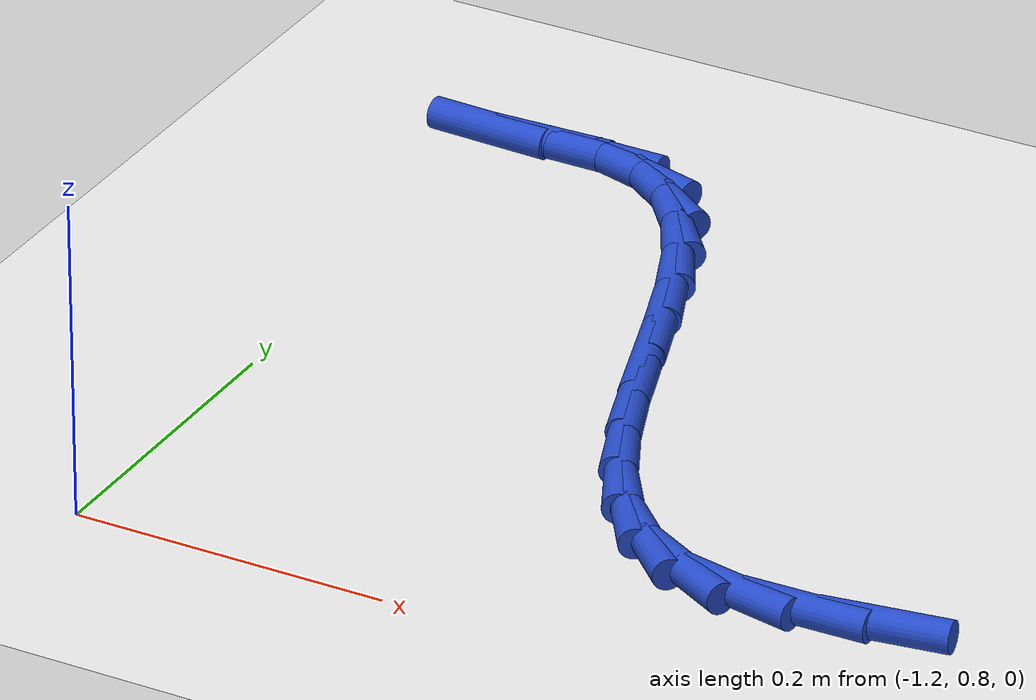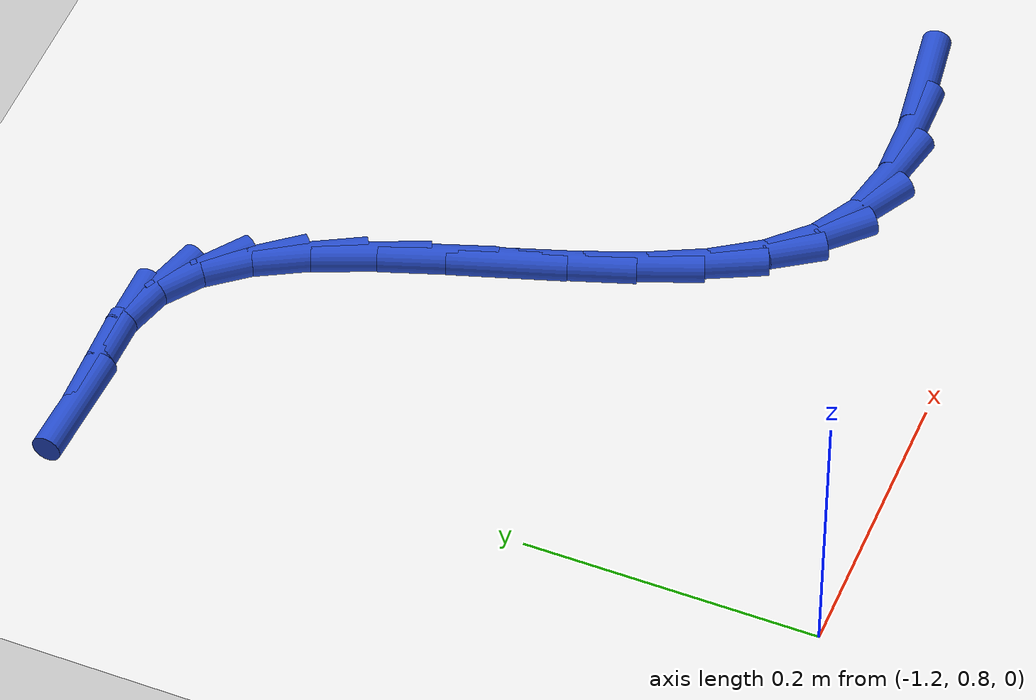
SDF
<sdf version="1.6">
 <world name="default">
  <model name="ground_plane">
   <static>1</static>
   <link name="link">
    <collision name="collision">
     <geometry><plane><normal>0 0 1</normal><size>100 100</size></plane></geometry>
     <surface><friction><ode><mu>100</mu><mu2>50</mu2></ode></friction></surface>
    </collision>
    <visual name="visual">
     <cast_shadows>0</cast_shadows>
     <geometry><plane><normal>0 0 1</normal><size>100 100</size></plane></geometry>
     <material>
      <script><uri>file://media/materials/scripts/gazebo.material</uri><name>Gazebo/WhiteGlow</name></script>
     </material>
    </visual>
   </link>
  </model>
  <model name="line">
   <link name="link_36">
    <pose>-0.7326934429722315 0.8970914601000852 0.01 0 1.57 0.14309042923364193</pose>
    <collision name="collision">
     <geometry><cylinder><radius>0.01</radius><length>0.08</length></cylinder></geometry>
    </collision>
    <visual name="visual">
     <material>
      <script><name>Gazebo/Blue</name><uri>file://media/materials/scripts/gazebo.material</uri></script>
     </material>
     <geometry><cylinder><radius>0.01</radius><length>0.08</length></cylinder></geometry>
    </visual>
   </link>
   <link name="link_37">
    <pose>-0.7790179785165596 0.8904172489223436 0.01 0 1.57 0.016314436669079748</pose>
    <collision name="collision">
     <geometry><cylinder><radius>0.01</radius><length>0.08</length></cylinder></geometry>
    </collision>
    <visual name="visual">
     <material>
      <script><name>Gazebo/Blue</name><uri>file://media/materials/scripts/gazebo.material</uri></script>
     </material>
     <geometry><cylinder><radius>0.01</radius><length>0.08</length></cylinder></geometry>
    </visual>
   </link>
   <link name="link_38">
    <pose>-0.8224476783297759 0.8897086549674132 0.01 0 1.57 -0.20586333262047113</pose>
    <collision name="collision">
     <geometry><cylinder><radius>0.01</radius><length>0.08</length></cylinder></geometry>
    </collision>
    <visual name="visual">
     <material>
      <script><name>Gazebo/Blue</name><uri>file://media/materials/scripts/gazebo.material</uri></script>
     </material>
     <geometry><cylinder><radius>0.01</radius><length>0.08</length></cylinder></geometry>
    </visual>
   </link>
   <link name="link_39">
    <pose>-0.8606828662853225 0.8976929894097176 0.01 0 1.57 -0.5078108951536892</pose>
    <collision name="collision">
     <geometry><cylinder><radius>0.01</radius><length>0.08</length></cylinder></geometry>
    </collision>
    <visual name="visual">
     <material>
      <script><name>Gazebo/Blue</name><uri>file://media/materials/scripts/gazebo.material</uri></script>
     </material>
     <geometry><cylinder><radius>0.01</radius><length>0.08</length></cylinder></geometry>
    </visual>
   </link>
   <link name="link_40">
    <pose>-0.8926396271941479 0.9154765494230397 0.01 0 1.57 -0.7788302168026623</pose>
    <collision name="collision">
     <geometry><cylinder><radius>0.01</radius><length>0.08</length></cylinder></geometry>
    </collision>
    <visual name="visual">
     <material>
      <script><name>Gazebo/Blue</name><uri>file://media/materials/scripts/gazebo.material</uri></script>
     </material>
     <geometry><cylinder><radius>0.01</radius><length>0.08</length></cylinder></geometry>
    </visual>
   </link>
   <link name="link_41">
    <pose>-0.9191371030563574 0.9416282235077327 0.01 0 1.57 -0.9804470711389746</pose>
    <collision name="collision">
     <geometry><cylinder><radius>0.01</radius><length>0.08</length></cylinder></geometry>
    </collision>
    <visual name="visual">
     <material>
      <script><name>Gazebo/Blue</name><uri>file://media/materials/scripts/gazebo.material</uri></script>
     </material>
     <geometry><cylinder><radius>0.01</radius><length>0.08</length></cylinder></geometry>
    </visual>
   </link>
   <link name="link_42">
    <pose>-0.9411603363959884 0.9744956995450904 0.01 0 1.57 -1.1162897351473104</pose>
    <collision name="collision">
     <geometry><cylinder><radius>0.01</radius><length>0.08</length></cylinder></geometry>
    </collision>
    <visual name="visual">
     <material>
      <script><name>Gazebo/Blue</name><uri>file://media/materials/scripts/gazebo.material</uri></script>
     </material>
     <geometry><cylinder><radius>0.01</radius><length>0.08</length></cylinder></geometry>
    </visual>
   </link>
   <link name="link_43">
    <pose>-0.9596943697370772 1.0124266654164067 0.01 0 1.57 -1.2009060556589932</pose>
    <collision name="collision">
     <geometry><cylinder><radius>0.01</radius><length>0.08</length></cylinder></geometry>
    </collision>
    <visual name="visual">
     <material>
      <script><name>Gazebo/Blue</name><uri>file://media/materials/scripts/gazebo.material</uri></script>
     </material>
     <geometry><cylinder><radius>0.01</radius><length>0.08</length></cylinder></geometry>
    </visual>
   </link>
   <link name="link_44">
    <pose>-0.975724245603661 1.0537688090029755 0.01 0 1.57 -1.2460469481754417</pose>
    <collision name="collision">
     <geometry><cylinder><radius>0.01</radius><length>0.08</length></cylinder></geometry>
    </collision>
    <visual name="visual">
     <material>
      <script><name>Gazebo/Blue</name><uri>file://media/materials/scripts/gazebo.material</uri></script>
     </material>
     <geometry><cylinder><radius>0.01</radius><length>0.08</length></cylinder></geometry>
    </visual>
   </link>
   <link name="link_45">
    <pose>-0.9902350065197768 1.0968698181860908 0.01 0 1.57 -1.2579417963438402</pose>
    <collision name="collision">
     <geometry><cylinder><radius>0.01</radius><length>0.08</length></cylinder></geometry>
    </collision>
    <visual name="visual">
     <material>
      <script><name>Gazebo/Blue</name><uri>file://media/materials/scripts/gazebo.material</uri></script>
     </material>
     <geometry><cylinder><radius>0.01</radius><length>0.08</length></cylinder></geometry>
    </visual>
   </link>
   <link name="link_46">
    <pose>-1.0042116950094613 1.1400773808470461 0.01 0 1.57 -1.2374177473726158</pose>
    <collision name="collision">
     <geometry><cylinder><radius>0.01</radius><length>0.08</length></cylinder></geometry>
    </collision>
    <visual name="visual">
     <material>
      <script><name>Gazebo/Blue</name><uri>file://media/materials/scripts/gazebo.material</uri></script>
     </material>
     <geometry><cylinder><radius>0.01</radius><length>0.08</length></cylinder></geometry>
    </visual>
   </link>
   <link name="link_47">
    <pose>-1.0186393535967517 1.1817391848671355 0.01 0 1.57 -1.1796189326627855</pose>
    <collision name="collision">
     <geometry><cylinder><radius>0.01</radius><length>0.08</length></cylinder></geometry>
    </collision>
    <visual name="visual">
     <material>
      <script><name>Gazebo/Blue</name><uri>file://media/materials/scripts/gazebo.material</uri></script>
     </material>
     <geometry><cylinder><radius>0.01</radius><length>0.08</length></cylinder></geometry>
    </visual>
   </link>
   <link name="link_48">
    <pose>-1.0345030248056843 1.2202029181276524 0.01 0 1.57 -1.0725928029355911</pose>
    <collision name="collision">
     <geometry><cylinder><radius>0.01</radius><length>0.08</length></cylinder></geometry>
    </collision>
    <visual name="visual">
     <material>
      <script><name>Gazebo/Blue</name><uri>file://media/materials/scripts/gazebo.material</uri></script>
     </material>
     <geometry><cylinder><radius>0.01</radius><length>0.08</length></cylinder></geometry>
    </visual>
   </link>
   <link name="link_49">
    <pose>-1.0527877511602963 1.2538162685098906 0.01 0 1.57 -0.896003662918484</pose>
    <collision name="collision">
     <geometry><cylinder><radius>0.01</radius><length>0.08</length></cylinder></geometry>
    </collision>
    <visual name="visual">
     <material>
      <script><name>Gazebo/Blue</name><uri>file://media/materials/scripts/gazebo.material</uri></script>
     </material>
     <geometry><cylinder><radius>0.01</radius><length>0.08</length></cylinder></geometry>
    </visual>
   </link>
   <link name="link_50">
    <pose>-1.0744785751846244 1.2809269238951444 0.01 0 1.57 -0.6284688805906374</pose>
    <collision name="collision">
     <geometry><cylinder><radius>0.01</radius><length>0.08</length></cylinder></geometry>
    </collision>
    <visual name="visual">
     <material>
      <script><name>Gazebo/Blue</name><uri>file://media/materials/scripts/gazebo.material</uri></script>
     </material>
     <geometry><cylinder><radius>0.01</radius><length>0.08</length></cylinder></geometry>
    </visual>
   </link>
   <link name="link_51">
    <pose>-1.1005605394027058 1.2998825721647074 0.01 0 1.57 -0.2833354514659433</pose>
    <collision name="collision">
     <geometry><cylinder><radius>0.01</radius><length>0.08</length></cylinder></geometry>
    </collision>
    <visual name="visual">
     <material>
      <script><name>Gazebo/Blue</name><uri>file://media/materials/scripts/gazebo.material</uri></script>
     </material>
     <geometry><cylinder><radius>0.01</radius><length>0.08</length></cylinder></geometry>
    </visual>
   </link>
   <link name="link_52">
    <pose>-1.1320157269772946 1.3090413494905073 0.01 0 1.57 -0.011447405670382469</pose>
    <collision name="collision">
     <geometry><cylinder><radius>0.01</radius><length>0.08</length></cylinder></geometry>
    </collision>
    <visual name="visual">
     <material>
      <script><name>Gazebo/Blue</name><uri>file://media/materials/scripts/gazebo.material</uri></script>
     </material>
     <geometry><cylinder><radius>0.01</radius><length>0.08</length></cylinder></geometry>
    </visual>
   </link>
   <link name="link_53">
    <pose>-1.1690603318638493 1.309465432635094 0.01 0 1.57 0.025244809828127657</pose>
    <collision name="collision">
     <geometry><cylinder><radius>0.01</radius><length>0.08</length></cylinder></geometry>
    </collision>
    <visual name="visual">
     <material>
      <script><name>Gazebo/Blue</name><uri>file://media/materials/scripts/gazebo.material</uri></script>
     </material>
     <geometry><cylinder><radius>0.01</radius><length>0.08</length></cylinder></geometry>
    </visual>
   </link>
   <link name="link_54">
    <pose>-1.2101382748947689 1.3084282074244304 0.01 0 1.57 -0.04664727080863376</pose>
    <collision name="collision">
     <geometry><cylinder><radius>0.01</radius><length>0.08</length></cylinder></geometry>
    </collision>
    <visual name="visual">
     <material>
      <script><name>Gazebo/Blue</name><uri>file://media/materials/scripts/gazebo.material</uri></script>
     </material>
     <geometry><cylinder><radius>0.01</radius><length>0.08</length></cylinder></geometry>
    </visual>
   </link>
  </model>
 </world>
</sdf>
